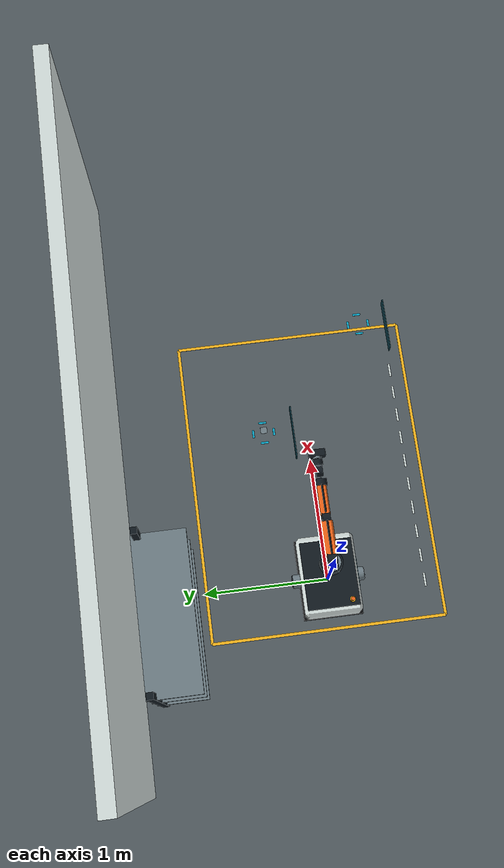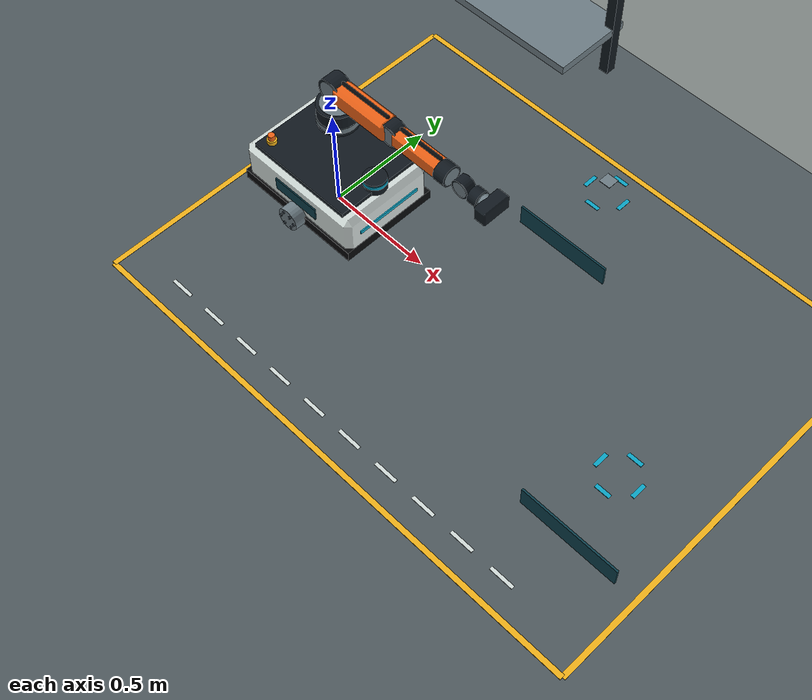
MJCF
<?xml version='1.0' encoding='utf-8'?>
<mujoco model="WBC_06_professional_pick_place">
  <compiler angle="radian" autolimits="true" />
  <option timestep=".002" gravity="0 0 -9.81" integrator="implicitfast" solver="Newton" iterations="80" tolerance="1e-9" cone="elliptic" />
  <visual>
    <global offwidth="1920" offheight="1080" azimuth="140" elevation="-25" />
    <quality shadowsize="4096" offsamples="4" />
    <headlight diffuse=".5 .5 .5" ambient=".25 .25 .25" specular=".2 .2 .2" />
    <map znear="0.01" zfar="30" force="0.02" />
  </visual>
  <statistic center="1.0 0.0 0.55" extent="3.8" />
  <default>
    <geom solref=".008 1" solimp=".95 .99 .001" friction=".8 .01 .0002" condim="4" />
    <default class="visual">
      <geom contype="0" conaffinity="0" group="2" mass="0" />
    </default>
    <default class="collision">
      <geom group="3" />
    </default>
    <default class="arm">
      <joint type="hinge" damping=".35" armature=".035" />
    </default>
  </default>
  <asset>
    <material name="ivory" rgba=".83 .87 .86 1" specular="0.45" shininess="0.35" />
    <material name="orange" rgba=".94 .39 .09 1" specular="0.4" shininess="0.35" />
    <material name="graphite" rgba=".065 .095 .12 1" specular="0.3" shininess="0.35" />
    <material name="steel" rgba=".43 .49 .52 1" specular="0.65" shininess="0.35" />
    <material name="rubber" rgba=".025 .03 .035 1" specular="0.02" shininess="0.35" />
    <material name="cyan" rgba=".04 .65 .78 1" specular="0.4" shininess="0.35" />
    <material name="yellow" rgba=".95 .70 .10 1" specular="0.3" shininess="0.35" />
    <material name="table" rgba=".58 .63 .65 1" specular="0.4" shininess="0.35" />
    <material name="part" rgba=".21 .53 .66 1" specular="0.5" shininess="0.35" />
    <texture name="floor_tex" type="2d" builtin="checker" rgb1=".30 .34 .36" rgb2=".32 .36 .38" width="512" height="512" />
    <material name="floor_mat" texture="floor_tex" texrepeat="8 8" reflectance=".08" />
    <mesh name="shell" vertex="-0.315 -0.2 -0.07999999999999999 -0.315 -0.2 0.07999999999999999 -0.315 0.2 -0.07999999999999999 -0.315 0.2 0.07999999999999999 -0.29 -0.225 -0.07999999999999999 -0.29 -0.225 0.07999999999999999 -0.29 -0.2 -0.105 -0.29 -0.2 0.105 -0.29 0.2 -0.105 -0.29 0.2 0.105 -0.29 0.225 -0.07999999999999999 -0.29 0.225 0.07999999999999999 0.29 -0.225 -0.07999999999999999 0.29 -0.225 0.07999999999999999 0.29 -0.2 -0.105 0.29 -0.2 0.105 0.29 0.2 -0.105 0.29 0.2 0.105 0.29 0.225 -0.07999999999999999 0.29 0.225 0.07999999999999999 0.315 -0.2 -0.07999999999999999 0.315 -0.2 0.07999999999999999 0.315 0.2 -0.07999999999999999 0.315 0.2 0.07999999999999999" face="4 0 6 19 17 23 9 11 3 22 16 18 8 2 10 13 21 15 5 7 1 12 14 20 2 0 1 2 1 3 11 2 3 11 10 2 19 10 11 19 18 10 9 3 1 9 1 7 9 7 15 9 15 17 9 19 11 9 17 19 21 17 15 21 23 17 22 23 21 22 21 20 22 20 14 22 14 16 22 18 19 22 19 23 8 10 18 8 18 16 8 16 14 8 14 6 8 0 2 8 6 0 5 1 0 5 0 4 5 15 7 5 13 15 12 20 21 12 21 13 12 6 14 12 4 6 12 5 4 12 13 5" />
    <mesh name="upper" vertex="-0.145 -0.028999999999999998 -0.034 -0.145 -0.028999999999999998 0.034 -0.145 0.028999999999999998 -0.034 -0.145 0.028999999999999998 0.034 -0.13099999999999998 -0.043 -0.034 -0.13099999999999998 -0.043 0.034 -0.13099999999999998 -0.028999999999999998 -0.048 -0.13099999999999998 -0.028999999999999998 0.048 -0.13099999999999998 0.028999999999999998 -0.048 -0.13099999999999998 0.028999999999999998 0.048 -0.13099999999999998 0.043 -0.034 -0.13099999999999998 0.043 0.034 0.13099999999999998 -0.043 -0.034 0.13099999999999998 -0.043 0.034 0.13099999999999998 -0.028999999999999998 -0.048 0.13099999999999998 -0.028999999999999998 0.048 0.13099999999999998 0.028999999999999998 -0.048 0.13099999999999998 0.028999999999999998 0.048 0.13099999999999998 0.043 -0.034 0.13099999999999998 0.043 0.034 0.145 -0.028999999999999998 -0.034 0.145 -0.028999999999999998 0.034 0.145 0.028999999999999998 -0.034 0.145 0.028999999999999998 0.034" face="4 0 6 9 11 3 22 16 18 8 2 10 17 23 19 13 21 15 5 7 1 12 14 20 2 0 1 2 1 3 11 19 18 11 18 10 11 2 3 11 10 2 9 3 1 9 1 7 22 14 16 22 20 14 22 18 19 22 19 23 8 10 18 8 18 16 8 16 14 8 14 6 8 0 2 8 6 0 21 20 22 21 22 23 17 21 23 17 15 21 17 19 11 17 11 9 17 9 7 17 7 15 5 1 0 5 0 4 5 15 7 5 13 15 12 20 21 12 21 13 12 6 14 12 4 6 12 5 4 12 13 5" />
    <mesh name="forearm" vertex="-0.125 -0.024000000000000004 -0.027 -0.125 -0.024000000000000004 0.027 -0.125 0.024000000000000004 -0.027 -0.125 0.024000000000000004 0.027 -0.114 -0.035 -0.027 -0.114 -0.035 0.027 -0.114 -0.024000000000000004 -0.038 -0.114 -0.024000000000000004 0.038 -0.114 0.024000000000000004 -0.038 -0.114 0.024000000000000004 0.038 -0.114 0.035 -0.027 -0.114 0.035 0.027 0.114 -0.035 -0.027 0.114 -0.035 0.027 0.114 -0.024000000000000004 -0.038 0.114 -0.024000000000000004 0.038 0.114 0.024000000000000004 -0.038 0.114 0.024000000000000004 0.038 0.114 0.035 -0.027 0.114 0.035 0.027 0.125 -0.024000000000000004 -0.027 0.125 -0.024000000000000004 0.027 0.125 0.024000000000000004 -0.027 0.125 0.024000000000000004 0.027" face="4 0 6 9 11 3 22 16 18 8 2 10 17 23 19 13 21 15 5 7 1 12 14 20 2 0 1 2 1 3 11 19 18 11 18 10 11 2 3 11 10 2 9 3 1 9 1 7 22 14 16 22 20 14 22 18 19 22 19 23 8 10 18 8 18 16 8 16 14 8 14 6 8 0 2 8 6 0 21 20 22 21 22 23 17 21 23 17 15 21 17 19 11 17 11 9 17 9 7 17 7 15 5 1 0 5 0 4 5 15 7 5 13 15 12 20 21 12 21 13 12 6 14 12 4 6 12 5 4 12 13 5" />
    <mesh name="wrist" vertex="-0.05 -0.026999999999999996 -0.027999999999999997 -0.05 -0.026999999999999996 0.027999999999999997 -0.05 0.026999999999999996 -0.027999999999999997 -0.05 0.026999999999999996 0.027999999999999997 -0.04 -0.037 -0.027999999999999997 -0.04 -0.037 0.027999999999999997 -0.04 -0.026999999999999996 -0.038 -0.04 -0.026999999999999996 0.038 -0.04 0.026999999999999996 -0.038 -0.04 0.026999999999999996 0.038 -0.04 0.037 -0.027999999999999997 -0.04 0.037 0.027999999999999997 0.04 -0.037 -0.027999999999999997 0.04 -0.037 0.027999999999999997 0.04 -0.026999999999999996 -0.038 0.04 -0.026999999999999996 0.038 0.04 0.026999999999999996 -0.038 0.04 0.026999999999999996 0.038 0.04 0.037 -0.027999999999999997 0.04 0.037 0.027999999999999997 0.05 -0.026999999999999996 -0.027999999999999997 0.05 -0.026999999999999996 0.027999999999999997 0.05 0.026999999999999996 -0.027999999999999997 0.05 0.026999999999999996 0.027999999999999997" face="4 0 6 9 11 3 22 16 18 8 2 10 17 23 19 13 21 15 5 7 1 12 14 20 2 0 1 2 1 3 11 19 18 11 18 10 11 2 3 11 10 2 9 3 1 9 1 7 22 14 16 22 20 14 22 18 19 22 19 23 8 10 18 8 18 16 8 16 14 8 14 6 8 0 2 8 6 0 21 20 22 21 22 23 17 21 23 17 15 21 17 19 11 17 11 9 17 9 7 17 7 15 5 1 0 5 0 4 5 15 7 5 13 15 12 20 21 12 21 13 12 6 14 12 4 6 12 5 4 12 13 5" />
    <mesh name="gripper" vertex="-0.03 -0.060000000000000005 -0.027000000000000003 -0.03 -0.060000000000000005 0.027000000000000003 -0.03 0.060000000000000005 -0.027000000000000003 -0.03 0.060000000000000005 0.027000000000000003 -0.024 -0.066 -0.027000000000000003 -0.024 -0.066 0.027000000000000003 -0.024 -0.060000000000000005 -0.033 -0.024 -0.060000000000000005 0.033 -0.024 0.060000000000000005 -0.033 -0.024 0.060000000000000005 0.033 -0.024 0.066 -0.027000000000000003 -0.024 0.066 0.027000000000000003 0.024 -0.066 -0.027000000000000003 0.024 -0.066 0.027000000000000003 0.024 -0.060000000000000005 -0.033 0.024 -0.060000000000000005 0.033 0.024 0.060000000000000005 -0.033 0.024 0.060000000000000005 0.033 0.024 0.066 -0.027000000000000003 0.024 0.066 0.027000000000000003 0.03 -0.060000000000000005 -0.027000000000000003 0.03 -0.060000000000000005 0.027000000000000003 0.03 0.060000000000000005 -0.027000000000000003 0.03 0.060000000000000005 0.027000000000000003" face="9 11 3 4 0 6 16 18 22 12 14 20 19 17 23 8 2 10 5 7 1 13 21 15 21 20 22 21 22 23 2 0 1 2 1 3 11 2 3 11 10 2 9 1 7 9 3 1 17 21 23 17 15 21 17 9 7 17 7 15 16 22 20 16 20 14 12 6 14 12 4 6 19 9 17 19 11 9 19 23 22 19 22 18 19 10 11 19 18 10 8 10 18 8 18 16 8 0 2 8 6 0 8 16 14 8 14 6 5 1 0 5 0 4 13 15 7 13 7 5 13 20 21 13 12 20 13 4 12 13 5 4" />
    <material name="robot_badge" rgba=".05 .25 .30 1" />
    <material name="pick_sign" rgba=".05 .25 .30 1" />
    <material name="place_sign" rgba=".05 .25 .30 1" />
  </asset>
  <worldbody>
    <light pos="0 -2 4" dir=".2 .4 -1" diffuse=".85 .85 .82" castshadow="true" />
    <light pos="3 2 3" dir="-.5 -.2 -1" diffuse=".55 .62 .68" castshadow="false" />
    <geom name="floor" type="plane" size="6 6 .1" material="floor_mat" friction="1.1 .005 .0001" />
    <camera name="overview" pos="3.6 -4.3 2.9" xyaxes=".87 .50 0 -.22 .38 .90" fovy="43" />
    <camera name="workcell" pos=".3 -3.1 1.9" xyaxes="1 0 0 0 .42 .91" fovy="48" />
    <camera name="pick_detail" pos="1.9 -.65 1.45" xyaxes=".70 .71 0 -.40 .39 .83" fovy="43" />
    <geom name="lane_0" type="box" size="1.25 0.012 0.001" pos="0.85 -0.9 0.002" material="yellow" class="visual" />
    <geom name="lane_1" type="box" size="1.25 0.012 0.001" pos="0.85 0.98 0.002" material="yellow" class="visual" />
    <geom name="lane_2" type="box" size="0.012 0.94 0.001" pos="-0.4 0.04 0.002" material="yellow" class="visual" />
    <geom name="lane_3" type="box" size="0.012 0.94 0.001" pos="2.1 0.04 0.002" material="yellow" class="visual" />
    <geom name="dash_-0.1" type="box" size="0.055 0.008 0.001" pos="-0.1 -0.78 0.003" material="ivory" class="visual" />
    <geom name="dash_0.1" type="box" size="0.055 0.008 0.001" pos="0.1 -0.78 0.003" material="ivory" class="visual" />
    <geom name="dash_0.3" type="box" size="0.055 0.008 0.001" pos="0.30000000000000004 -0.78 0.003" material="ivory" class="visual" />
    <geom name="dash_0.5" type="box" size="0.055 0.008 0.001" pos="0.5000000000000001 -0.78 0.003" material="ivory" class="visual" />
    <geom name="dash_0.7" type="box" size="0.055 0.008 0.001" pos="0.7000000000000001 -0.78 0.003" material="ivory" class="visual" />
    <geom name="dash_0.9" type="box" size="0.055 0.008 0.001" pos="0.9 -0.78 0.003" material="ivory" class="visual" />
    <geom name="dash_1.1" type="box" size="0.055 0.008 0.001" pos="1.1 -0.78 0.003" material="ivory" class="visual" />
    <geom name="dash_1.3" type="box" size="0.055 0.008 0.001" pos="1.3 -0.78 0.003" material="ivory" class="visual" />
    <geom name="dash_1.5" type="box" size="0.055 0.008 0.001" pos="1.5 -0.78 0.003" material="ivory" class="visual" />
    <geom name="dash_1.7" type="box" size="0.055 0.008 0.001" pos="1.7 -0.78 0.003" material="ivory" class="visual" />
    <body name="table_pick" pos="1.1 0.38 0">
      <geom name="pick_top" type="box" size="0.24 0.23 0.022" pos="0 0 0.628" material="table" class="collision" />
      <geom name="pick_leg_0" type="box" size="0.023 0.023 0.285" pos="-0.19 -0.18 0.31" material="graphite" class="collision" />
      <geom name="pick_foot_0" type="cylinder" size="0.037 0.012" pos="-0.19 -0.18 0.018" material="rubber" class="collision" />
      <geom name="pick_leg_1" type="box" size="0.023 0.023 0.285" pos="-0.19 0.18 0.31" material="graphite" class="collision" />
      <geom name="pick_foot_1" type="cylinder" size="0.037 0.012" pos="-0.19 0.18 0.018" material="rubber" class="collision" />
      <geom name="pick_leg_2" type="box" size="0.023 0.023 0.285" pos="0.19 -0.18 0.31" material="graphite" class="collision" />
      <geom name="pick_foot_2" type="cylinder" size="0.037 0.012" pos="0.19 -0.18 0.018" material="rubber" class="collision" />
      <geom name="pick_leg_3" type="box" size="0.023 0.023 0.285" pos="0.19 0.18 0.31" material="graphite" class="collision" />
      <geom name="pick_foot_3" type="cylinder" size="0.037 0.012" pos="0.19 0.18 0.018" material="rubber" class="collision" />
      <geom name="pick_brace" type="box" size="0.2 0.018 0.025" pos="0 0.18 0.17" material="steel" class="collision" />
      <geom name="pick_panel" type="box" size="0.205 0.004 0.045" pos="0 -0.235 0.555" material="pick_sign" class="visual" />
      <geom name="pick_nest" type="box" size="0.07 0.07 0.0015" pos="0 0 0.6515" material="graphite" class="collision" />
      <geom name="pick_mark_0" type="box" size="0.008 0.03 0.001" pos="-0.08 0 0.652" material="cyan" class="visual" />
      <geom name="pick_mark_1" type="box" size="0.008 0.03 0.001" pos="0.08 0 0.652" material="cyan" class="visual" />
      <geom name="pick_mark_2" type="box" size="0.03 0.008 0.001" pos="0 -0.08 0.652" material="cyan" class="visual" />
      <geom name="pick_mark_3" type="box" size="0.03 0.008 0.001" pos="0 0.08 0.652" material="cyan" class="visual" />
    </body>
    <body name="table_place" pos="1.9 -0.48 0">
      <geom name="place_top" type="box" size="0.24 0.23 0.022" pos="0 0 0.628" material="table" class="collision" />
      <geom name="place_leg_0" type="box" size="0.023 0.023 0.285" pos="-0.19 -0.18 0.31" material="graphite" class="collision" />
      <geom name="place_foot_0" type="cylinder" size="0.037 0.012" pos="-0.19 -0.18 0.018" material="rubber" class="collision" />
      <geom name="place_leg_1" type="box" size="0.023 0.023 0.285" pos="-0.19 0.18 0.31" material="graphite" class="collision" />
      <geom name="place_foot_1" type="cylinder" size="0.037 0.012" pos="-0.19 0.18 0.018" material="rubber" class="collision" />
      <geom name="place_leg_2" type="box" size="0.023 0.023 0.285" pos="0.19 -0.18 0.31" material="graphite" class="collision" />
      <geom name="place_foot_2" type="cylinder" size="0.037 0.012" pos="0.19 -0.18 0.018" material="rubber" class="collision" />
      <geom name="place_leg_3" type="box" size="0.023 0.023 0.285" pos="0.19 0.18 0.31" material="graphite" class="collision" />
      <geom name="place_foot_3" type="cylinder" size="0.037 0.012" pos="0.19 0.18 0.018" material="rubber" class="collision" />
      <geom name="place_brace" type="box" size="0.2 0.018 0.025" pos="0 0.18 0.17" material="steel" class="collision" />
      <geom name="place_panel" type="box" size="0.205 0.004 0.045" pos="0 -0.235 0.555" material="place_sign" class="visual" />
      <geom name="place_nest" type="box" size="0.07 0.07 0.0015" pos="0 0 0.6515" material="graphite" class="collision" />
      <geom name="place_mark_0" type="box" size="0.008 0.03 0.001" pos="-0.08 0 0.652" material="cyan" class="visual" />
      <geom name="place_mark_1" type="box" size="0.008 0.03 0.001" pos="0.08 0 0.652" material="cyan" class="visual" />
      <geom name="place_mark_2" type="box" size="0.03 0.008 0.001" pos="0 -0.08 0.652" material="cyan" class="visual" />
      <geom name="place_mark_3" type="box" size="0.03 0.008 0.001" pos="0 0.08 0.652" material="cyan" class="visual" />
    </body>
    <geom name="backwall" type="box" size="2.5 0.055 1.2" pos="1.0 1.6 1.2" material="ivory" class="visual" />
    <geom name="shelf_0.25" type="box" size="0.58 0.2 0.02" pos="-0.25 1.24 0.25" material="steel" class="visual" />
    <geom name="shelf_0.7" type="box" size="0.58 0.2 0.02" pos="-0.25 1.24 0.7" material="steel" class="visual" />
    <geom name="shelf_1.15" type="box" size="0.58 0.2 0.02" pos="-0.25 1.24 1.15" material="steel" class="visual" />
    <geom name="rack_-0.81" type="box" size="0.025 0.025 0.7" pos="-0.81 1.39 0.7" material="graphite" class="visual" />
    <geom name="rack_0.31" type="box" size="0.025 0.025 0.7" pos="0.31 1.39 0.7" material="graphite" class="visual" />
    <geom name="tote_0" type="box" size="0.11 0.14 0.07" pos="-0.67 1.2 0.8" material="cyan" class="visual" />
    <geom name="tote_1" type="box" size="0.11 0.14 0.07" pos="-0.38000000000000006 1.2 0.8" material="cyan" class="visual" />
    <geom name="tote_2" type="box" size="0.11 0.14 0.07" pos="-0.09000000000000008 1.2 0.8" material="cyan" class="visual" />
    <geom name="tote_3" type="box" size="0.11 0.14 0.07" pos="0.19999999999999984 1.2 0.8" material="cyan" class="visual" />
    <body name="pick_object" pos="1.10 .38 .689">
      <freejoint name="object_free" />
      <geom name="part_collision" type="box" size="0.035 0.035 0.032" pos="0 0 0" material="part" class="collision" mass="0.16" friction="1.2 .01 .0001" />
      <geom name="part_top_insert" type="box" size="0.025 0.025 0.001" pos="0 0 0.033" material="steel" class="visual" />
    </body>
    <body name="base_link" pos="0 0 .150">
      <freejoint name="base_free" />
      <inertial pos="0 0 0" mass="38" diaginertia=".90 1.40 1.90" />
      <geom name="chassis_collision" type="box" size="0.29 0.2 0.08" pos="0 0 0.025" material="graphite" class="collision" />
      <geom name="chassis_shell" type="mesh" mesh="shell" pos="0 0 .025" material="ivory" class="visual" />
      <geom name="lower_bumper" type="box" size="0.317 0.235 0.024" pos="0 0 -0.057" material="rubber" class="visual" />
      <geom name="top_deck" type="box" size="0.265 0.205 0.011" pos="0 0 0.139" material="graphite" class="visual" />
      <geom name="front_led" type="box" size="0.003 0.16 0.008" pos="0.317 0 0.039" material="cyan" class="visual" />
      <geom name="badge" type="box" size="0.12 0.003 0.031" pos="0 -0.228 0.04" material="robot_badge" class="visual" />
      <geom name="scanner_body" type="cylinder" size="0.052 0.03" pos="0.24 0 0.163" material="graphite" class="visual" />
      <geom name="scanner_glass" type="cylinder" size="0.053 0.009" pos="0.24 0 0.174" material="cyan" class="visual" />
      <geom name="estop_ring" type="cylinder" size="0.022 0.01" pos="-0.22 -0.15 0.16" material="yellow" class="visual" />
      <geom name="estop" type="cylinder" size="0.015 0.015" pos="-0.22 -0.15 0.18" material="orange" class="visual" />
      <geom name="caster_front" type="sphere" size="0.035" pos="0.24 0 -0.115" material="rubber" class="collision" />
      <geom name="caster_rear" type="sphere" size="0.035" pos="-0.24 0 -0.115" material="rubber" class="collision" />
      <body name="wheel_left" pos="0 0.25 -0.05">
        <joint name="wheel_left_j" type="hinge" axis="0 1 0" damping="0.08" armature="0.025" />
        <geom name="tire_left" type="ellipsoid" size="0.1 0.1 0.032" pos="0 0 0" material="rubber" class="collision" euler="1.57079632679 0 0" mass="1.2" friction="1.3 .005 .0001" />
        <geom name="hub_left" type="cylinder" size="0.054 0.034" pos="0 0 0" material="steel" class="visual" euler="1.57079632679 0 0" />
        <geom name="wheel_left_bolt0" type="sphere" size="0.007" pos="0.038 0.036 0.0" material="graphite" class="visual" />
        <geom name="wheel_left_bolt1" type="sphere" size="0.007" pos="0.019000000000000003 0.036 0.03290896534380867" material="graphite" class="visual" />
        <geom name="wheel_left_bolt2" type="sphere" size="0.007" pos="-0.018999999999999993 0.036 0.03290896534380867" material="graphite" class="visual" />
        <geom name="wheel_left_bolt3" type="sphere" size="0.007" pos="-0.038 0.036 4.653657836759942e-18" material="graphite" class="visual" />
        <geom name="wheel_left_bolt4" type="sphere" size="0.007" pos="-0.019000000000000017 0.036 -0.03290896534380866" material="graphite" class="visual" />
        <geom name="wheel_left_bolt5" type="sphere" size="0.007" pos="0.019000000000000003 0.036 -0.03290896534380867" material="graphite" class="visual" />
      </body>
      <body name="wheel_right" pos="0 -0.25 -0.05">
        <joint name="wheel_right_j" type="hinge" axis="0 1 0" damping="0.08" armature="0.025" />
        <geom name="tire_right" type="ellipsoid" size="0.1 0.1 0.032" pos="0 0 0" material="rubber" class="collision" euler="1.57079632679 0 0" mass="1.2" friction="1.3 .005 .0001" />
        <geom name="hub_right" type="cylinder" size="0.054 0.034" pos="0 0 0" material="steel" class="visual" euler="1.57079632679 0 0" />
        <geom name="wheel_right_bolt0" type="sphere" size="0.007" pos="0.038 -0.036 0.0" material="graphite" class="visual" />
        <geom name="wheel_right_bolt1" type="sphere" size="0.007" pos="0.019000000000000003 -0.036 0.03290896534380867" material="graphite" class="visual" />
        <geom name="wheel_right_bolt2" type="sphere" size="0.007" pos="-0.018999999999999993 -0.036 0.03290896534380867" material="graphite" class="visual" />
        <geom name="wheel_right_bolt3" type="sphere" size="0.007" pos="-0.038 -0.036 4.653657836759942e-18" material="graphite" class="visual" />
        <geom name="wheel_right_bolt4" type="sphere" size="0.007" pos="-0.019000000000000017 -0.036 -0.03290896534380866" material="graphite" class="visual" />
        <geom name="wheel_right_bolt5" type="sphere" size="0.007" pos="0.019000000000000003 -0.036 -0.03290896534380867" material="graphite" class="visual" />
      </body>
      <body name="arm_mount" pos=".04 0 .145">
        <geom name="pedestal" type="cylinder" size="0.09 0.135" pos="0 0 0.135" material="graphite" class="collision" mass="2.4" />
        <geom name="pedestal_band" type="cylinder" size="0.091 0.012" pos="0 0 0.255" material="steel" class="visual" />
        <body name="link1" pos="0 0 0.275">
          <joint name="q1_shoulder_pan" axis="0 0 1" range="-2.967 2.967" class="arm" />
          <geom name="link1_collision" type="capsule" fromto="0 0 0 0 0 0.13" size="0.065" material="ivory" mass="2.8" class="collision" />
          <geom name="gear_0" type="cylinder" size="0.08775000000000001 0.052000000000000005" pos="0 0 0" material="graphite" class="visual" euler="0 0 0" />
          <geom name="cap_0" type="cylinder" size="0.0728 0.0533" pos="0 0 0" material="steel" class="visual" euler="0 0 0" />
          <body name="link2" pos="0 0 0.13">
            <joint name="q2_shoulder_lift" axis="0 1 0" range="-1.92 1.92" class="arm" />
            <geom name="link2_collision" type="capsule" fromto="0 0 0 0.32 0 0" size="0.046" material="orange" mass="3.8" class="collision" />
            <geom name="gear_1" type="cylinder" size="0.0621 0.0368" pos="0 0 0" material="graphite" class="visual" euler="1.5707963267948966 0 0" />
            <geom name="cap_1" type="cylinder" size="0.05152 0.03772" pos="0 0 0" material="steel" class="visual" euler="1.5707963267948966 0 0" />
            <geom name="fairing_1" type="mesh" mesh="upper" pos="0.16 0 0" material="orange" class="visual" />
            <geom name="loom_1" type="capsule" fromto="0.045 0 0.062 0.29000000000000004 0 0.062" size="0.008" material="rubber" class="visual" />
            <body name="link3" pos="0.32 0 0">
              <joint name="q3_elbow" axis="0 1 0" range="-2.618 2.618" class="arm" />
              <geom name="link3_collision" type="capsule" fromto="0 0 0 0.28 0 0" size="0.038" material="orange" mass="2.6" class="collision" />
              <geom name="gear_2" type="cylinder" size="0.051300000000000005 0.0304" pos="0 0 0" material="graphite" class="visual" euler="1.5707963267948966 0 0" />
              <geom name="cap_2" type="cylinder" size="0.04256 0.031159999999999997" pos="0 0 0" material="steel" class="visual" euler="1.5707963267948966 0 0" />
              <geom name="fairing_2" type="mesh" mesh="forearm" pos="0.14 0 0" material="orange" class="visual" />
              <geom name="loom_2" type="capsule" fromto="0.045 0 0.054 0.25 0 0.054" size="0.008" material="rubber" class="visual" />
              <body name="link4" pos="0.28 0 0">
                <joint name="q4_wrist1" axis="1 0 0" range="-2.967 2.967" class="arm" />
                <geom name="link4_collision" type="capsule" fromto="0 0 0 0.09 0 0" size="0.034" material="ivory" mass="0.75" class="collision" />
                <geom name="gear_3" type="cylinder" size="0.0459 0.027200000000000002" pos="0 0 0" material="graphite" class="visual" euler="0 1.5707963267948966 0" />
                <geom name="cap_3" type="cylinder" size="0.03808000000000001 0.027880000000000002" pos="0 0 0" material="steel" class="visual" euler="0 1.5707963267948966 0" />
                <body name="link5" pos="0.09 0 0">
                  <joint name="q5_wrist2" axis="0 1 0" range="-1.92 1.92" class="arm" />
                  <geom name="link5_collision" type="capsule" fromto="0 0 0 0.07 0 0" size="0.03" material="ivory" mass="0.55" class="collision" />
                  <geom name="gear_4" type="cylinder" size="0.0405 0.024" pos="0 0 0" material="graphite" class="visual" euler="1.5707963267948966 0 0" />
                  <geom name="cap_4" type="cylinder" size="0.033600000000000005 0.024599999999999997" pos="0 0 0" material="steel" class="visual" euler="1.5707963267948966 0 0" />
                  <body name="link6" pos="0.07 0 0">
                    <joint name="q6_wrist3" axis="1 0 0" range="-6.283 6.283" class="arm" />
                    <geom name="link6_collision" type="capsule" fromto="0 0 0 0.05 0 0" size="0.027" material="ivory" mass="0.35" class="collision" />
                    <geom name="gear_5" type="cylinder" size="0.03645 0.0216" pos="0 0 0" material="graphite" class="visual" euler="0 1.5707963267948966 0" />
                    <geom name="cap_5" type="cylinder" size="0.030240000000000003 0.02214" pos="0 0 0" material="steel" class="visual" euler="0 1.5707963267948966 0" />
                    <body name="gripper_base" pos=".05 0 0">
                      <geom name="gripper_collision" type="box" size="0.03 0.066 0.033" pos="0.02 0 0" material="graphite" class="collision" mass="0.55" />
                      <geom name="gripper_housing" type="mesh" mesh="gripper" pos=".02 0 0" material="graphite" class="visual" />
                      <geom name="tool_flange" type="cylinder" size="0.033 0.012" pos="-0.01 0 0" material="steel" class="visual" euler="0 1.57079632679 0" />
                      <site name="ee_site" pos=".115 0 0" size="0.003" rgba="0 0 0 0" />
                      <body name="finger_left" pos="0.045 0.02 0">
                        <joint name="finger_left_j" type="slide" axis="0 1 0" range="0 .035" damping="5" armature="0.002" />
                        <geom name="finger_metal_left" type="box" size="0.045 0.007 0.016" pos="0.035 0 0" material="steel" class="collision" mass="0.08" />
                        <geom name="pad_left" type="box" size="0.03 0.004 0.015" pos="0.07 -0.01 0" material="rubber" class="collision" mass="0.01" friction="1.4 .02 .0002" condim="6" solref=".005 1" />
                      </body>
                      <body name="finger_right" pos="0.045 -0.02 0">
                        <joint name="finger_right_j" type="slide" axis="0 -1 0" range="0 .035" damping="5" armature="0.002" />
                        <geom name="finger_metal_right" type="box" size="0.045 0.007 0.016" pos="0.035 0 0" material="steel" class="collision" mass="0.08" />
                        <geom name="pad_right" type="box" size="0.03 0.004 0.015" pos="0.07 0.01 0" material="rubber" class="collision" mass="0.01" friction="1.4 .02 .0002" condim="6" solref=".005 1" />
                      </body>
                    </body>
                  </body>
                </body>
              </body>
            </body>
          </body>
        </body>
      </body>
    </body>
  </worldbody>
  <contact>
    <pair geom1="caster_front" geom2="floor" friction=".003 .003 .0001 .0001 .0001" condim="6" />
    <pair geom1="caster_rear" geom2="floor" friction=".003 .003 .0001 .0001 .0001" condim="6" />
    <exclude body1="link4" body2="link6" />
    <exclude body1="link5" body2="gripper_base" />
    <exclude body1="link6" body2="finger_left" />
    <exclude body1="link6" body2="finger_right" />
    <exclude body1="base_link" body2="table_pick"/>
    <exclude body1="base_link" body2="table_place"/>
  </contact>
  <actuator>
    <motor name="tau_L" joint="wheel_left_j" ctrlrange="-12 12" forcerange="-12 12" />
    <motor name="tau_R" joint="wheel_right_j" ctrlrange="-12 12" forcerange="-12 12" />
    <motor name="tau_1" joint="q1_shoulder_pan" ctrlrange="-70 70" forcerange="-70 70" />
    <motor name="tau_2" joint="q2_shoulder_lift" ctrlrange="-70 70" forcerange="-70 70" />
    <motor name="tau_3" joint="q3_elbow" ctrlrange="-55 55" forcerange="-55 55" />
    <motor name="tau_4" joint="q4_wrist1" ctrlrange="-18 18" forcerange="-18 18" />
    <motor name="tau_5" joint="q5_wrist2" ctrlrange="-18 18" forcerange="-18 18" />
    <motor name="tau_6" joint="q6_wrist3" ctrlrange="-12 12" forcerange="-12 12" />
    <position name="gripper_left" joint="finger_left_j" kp="1000" kv="20" ctrlrange="0 .035" forcerange="-30 30" />
    <position name="gripper_right" joint="finger_right_j" kp="1000" kv="20" ctrlrange="0 .035" forcerange="-30 30" />
  </actuator>
  <sensor>
    <jointpos name="q1_shoulder_pan_position" joint="q1_shoulder_pan" />
    <jointvel name="q1_shoulder_pan_velocity" joint="q1_shoulder_pan" />
    <jointpos name="q2_shoulder_lift_position" joint="q2_shoulder_lift" />
    <jointvel name="q2_shoulder_lift_velocity" joint="q2_shoulder_lift" />
    <jointpos name="q3_elbow_position" joint="q3_elbow" />
    <jointvel name="q3_elbow_velocity" joint="q3_elbow" />
    <jointpos name="q4_wrist1_position" joint="q4_wrist1" />
    <jointvel name="q4_wrist1_velocity" joint="q4_wrist1" />
    <jointpos name="q5_wrist2_position" joint="q5_wrist2" />
    <jointvel name="q5_wrist2_velocity" joint="q5_wrist2" />
    <jointpos name="q6_wrist3_position" joint="q6_wrist3" />
    <jointvel name="q6_wrist3_velocity" joint="q6_wrist3" />
    <framepos name="tcp_position" objtype="site" objname="ee_site" />
    <framequat name="tcp_orientation" objtype="site" objname="ee_site" />
  </sensor>

</mujoco>
